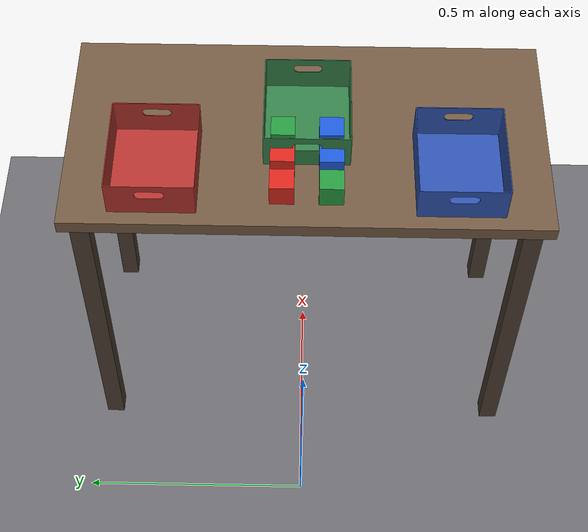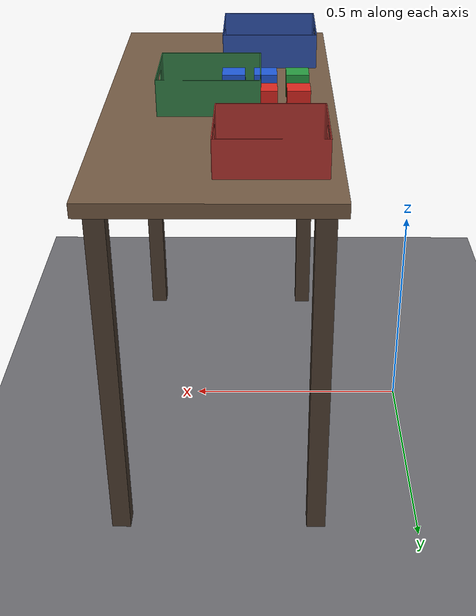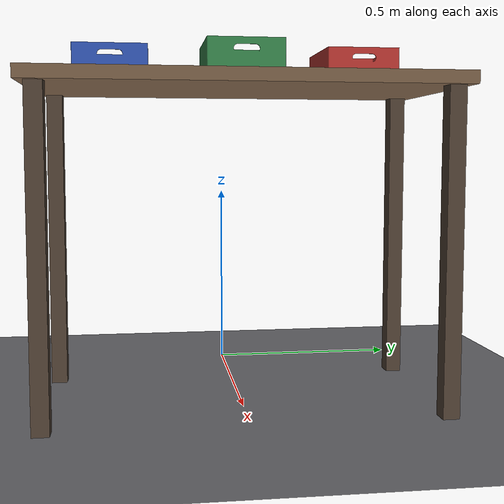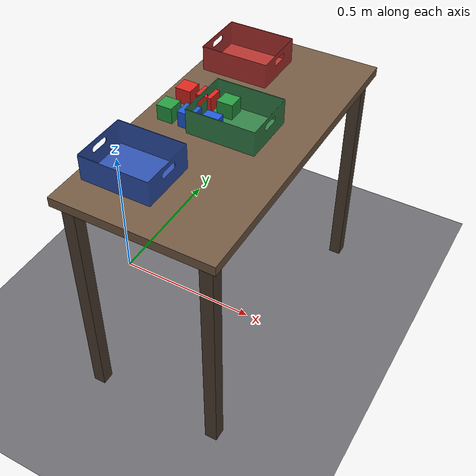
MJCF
<mujoco model="g1_cube_sort">
  <include file="g1_upper.xml"/>

  <!-- timestep is overridden at load time by the app (?dt=...) -->
  <option timestep="0.002" integrator="implicitfast" cone="elliptic" impratio="10"/>

  <default>
    <default class="touchable">
      <geom solref="0.01 1" priority="1"/>
    </default>
    <default class="object">
      <geom solref="0.01 1" priority="2"/>
    </default>
  </default>

  <asset>
    <material name="floor" rgba="0.42 0.42 0.44 1"/>
    <material name="table" rgba="0.45 0.35 0.26 1"/>
    <material name="table_leg" rgba="0.3 0.24 0.19 1"/>
    <material name="red" rgba="0.85 0.15 0.12 1"/>
    <material name="green" rgba="0.15 0.6 0.25 1"/>
    <material name="blue" rgba="0.12 0.35 0.85 1"/>
    <material name="red_bin" rgba="0.7 0.2 0.18 1"/>
    <material name="green_bin" rgba="0.2 0.5 0.28 1"/>
    <material name="blue_bin" rgba="0.18 0.32 0.68 1"/>
    <mesh name="bin_visual" file="objects/bin/visual.stl"/>
  </asset>

  <worldbody>
    <geom name="floor" type="plane" size="0 0 0.05" material="floor"/>

    <body name="table" pos="0.43 0 0">
      <geom name="table_top" class="touchable" type="box" size="0.25 0.5 0.015" pos="0 0 0.775" material="table"/>
      <geom type="box" size="0.02 0.02 0.38" pos="0.21 0.46 0.38" material="table_leg"/>
      <geom type="box" size="0.02 0.02 0.38" pos="0.21 -0.46 0.38" material="table_leg"/>
      <geom type="box" size="0.02 0.02 0.38" pos="-0.21 0.46 0.38" material="table_leg"/>
      <geom type="box" size="0.02 0.02 0.38" pos="-0.21 -0.46 0.38" material="table_leg"/>
    </body>

    <!-- Bins (220 x 180 x 80 mm, base centred at pos): red on the left, green ahead, blue on the right.
         The mesh is visual only; collision is the matching box set below. -->
    <body name="bin_red" pos="0.32 0.31 0.79">
      <geom type="mesh" mesh="bin_visual" contype="0" conaffinity="0" density="0" material="red_bin"/>
      <geom name="bin_red_floor" class="touchable" type="box" group="3" size="0.11 0.09 0.001" pos="0 0 0.001"/>
      <geom name="bin_red_wall_x0" class="touchable" type="box" group="3" size="0.001 0.09 0.039" pos="0.109 0 0.041"/>
      <geom name="bin_red_wall_x1" class="touchable" type="box" group="3" size="0.001 0.09 0.039" pos="-0.109 0 0.041"/>
      <geom name="bin_red_wall_y0" class="touchable" type="box" group="3" size="0.11 0.001 0.039" pos="0 0.089 0.041"/>
      <geom name="bin_red_wall_y1" class="touchable" type="box" group="3" size="0.11 0.001 0.039" pos="0 -0.089 0.041"/>
    </body>
    <body name="bin_green" pos="0.45 0.0 0.79">
      <geom type="mesh" mesh="bin_visual" contype="0" conaffinity="0" density="0" material="green_bin"/>
      <geom name="bin_green_floor" class="touchable" type="box" group="3" size="0.11 0.09 0.001" pos="0 0 0.001"/>
      <geom name="bin_green_wall_x0" class="touchable" type="box" group="3" size="0.001 0.09 0.039" pos="0.109 0 0.041"/>
      <geom name="bin_green_wall_x1" class="touchable" type="box" group="3" size="0.001 0.09 0.039" pos="-0.109 0 0.041"/>
      <geom name="bin_green_wall_y0" class="touchable" type="box" group="3" size="0.11 0.001 0.039" pos="0 0.089 0.041"/>
      <geom name="bin_green_wall_y1" class="touchable" type="box" group="3" size="0.11 0.001 0.039" pos="0 -0.089 0.041"/>
    </body>
    <body name="bin_blue" pos="0.32 -0.31 0.79">
      <geom type="mesh" mesh="bin_visual" contype="0" conaffinity="0" density="0" material="blue_bin"/>
      <geom name="bin_blue_floor" class="touchable" type="box" group="3" size="0.11 0.09 0.001" pos="0 0 0.001"/>
      <geom name="bin_blue_wall_x0" class="touchable" type="box" group="3" size="0.001 0.09 0.039" pos="0.109 0 0.041"/>
      <geom name="bin_blue_wall_x1" class="touchable" type="box" group="3" size="0.001 0.09 0.039" pos="-0.109 0 0.041"/>
      <geom name="bin_blue_wall_y0" class="touchable" type="box" group="3" size="0.11 0.001 0.039" pos="0 0.089 0.041"/>
      <geom name="bin_blue_wall_y1" class="touchable" type="box" group="3" size="0.11 0.001 0.039" pos="0 -0.089 0.041"/>
    </body>

    <!-- Cubes: 5 cm printed PLA, ~60 g with infill; positions are set at reset -->
    <body name="cube0" pos="0.26 0.05 0.816">
      <freejoint name="cube0_free"/>
      <geom name="cube0" class="object" type="box" size="0.025 0.025 0.025" mass="0.06" condim="4" friction="0.5 0.005 0.0002" material="red"/>
    </body>
    <body name="cube1" pos="0.33 0.05 0.816">
      <freejoint name="cube1_free"/>
      <geom name="cube1" class="object" type="box" size="0.025 0.025 0.025" mass="0.06" condim="4" friction="0.5 0.005 0.0002" material="red"/>
    </body>
    <body name="cube2" pos="0.40 0.05 0.816">
      <freejoint name="cube2_free"/>
      <geom name="cube2" class="object" type="box" size="0.025 0.025 0.025" mass="0.06" condim="4" friction="0.5 0.005 0.0002" material="green"/>
    </body>
    <body name="cube3" pos="0.26 -0.05 0.816">
      <freejoint name="cube3_free"/>
      <geom name="cube3" class="object" type="box" size="0.025 0.025 0.025" mass="0.06" condim="4" friction="0.5 0.005 0.0002" material="green"/>
    </body>
    <body name="cube4" pos="0.33 -0.05 0.816">
      <freejoint name="cube4_free"/>
      <geom name="cube4" class="object" type="box" size="0.025 0.025 0.025" mass="0.06" condim="4" friction="0.5 0.005 0.0002" material="blue"/>
    </body>
    <body name="cube5" pos="0.40 -0.05 0.816">
      <freejoint name="cube5_free"/>
      <geom name="cube5" class="object" type="box" size="0.025 0.025 0.025" mass="0.06" condim="4" friction="0.5 0.005 0.0002" material="blue"/>
    </body>
  </worldbody>
</mujoco>

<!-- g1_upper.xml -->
<!-- Generated by scripts/build-g1-mjcf.py from MuJoCo Menagerie unitree_g1/g1_with_hands.xml (commit 0059d4335f8156206f63a35662313385f7ad6d74, BSD-3-Clause, see LICENSE-g1). Do not edit by hand. -->
<mujoco model="g1_29dof_with_hand_fixed_base">
  <compiler angle="radian" meshdir="meshes" />
  <option integrator="implicitfast" />
  <default>
    <default class="g1">
      <site rgba="1 0 0 1" size="0.01" group="5" />
      <joint armature="0.01" frictionloss="0.3" />
      <position inheritrange="1" />
      <default class="visual">
        <geom group="2" type="mesh" contype="0" conaffinity="0" density="0" material="metal" />
      </default>
      <default class="collision">
        <geom group="3" type="mesh" />
        <default class="foot">
          <geom type="sphere" size="0.005" priority="1" friction="0.6" condim="3" />
        </default>
      </default>
    </default>
  </default>
  <asset>
    <material name="black" rgba="0.2 0.2 0.2 1" />
    <material name="metal" rgba="0.7 0.7 0.7 1" />
    <mesh name="head_link_hull" file="hulls/head_link.STL" />
    <mesh name="left_elbow_link_hull" file="hulls/left_elbow_link.STL" />
    <mesh name="left_hand_index_0_link_hull" file="hulls/left_hand_index_0_link.STL" />
    <mesh name="left_hand_index_1_link_hull" file="hulls/left_hand_index_1_link.STL" />
    <mesh name="left_hand_middle_0_link_hull" file="hulls/left_hand_middle_0_link.STL" />
    <mesh name="left_hand_middle_1_link_hull" file="hulls/left_hand_middle_1_link.STL" />
    <mesh name="left_hand_palm_link_hull" file="hulls/left_hand_palm_link.STL" />
    <mesh name="left_hand_thumb_0_link_hull" file="hulls/left_hand_thumb_0_link.STL" />
    <mesh name="left_hand_thumb_2_link_hull" file="hulls/left_hand_thumb_2_link.STL" />
    <mesh name="left_shoulder_yaw_link_hull" file="hulls/left_shoulder_yaw_link.STL" />
    <mesh name="left_wrist_pitch_link_hull" file="hulls/left_wrist_pitch_link.STL" />
    <mesh name="left_wrist_roll_link_hull" file="hulls/left_wrist_roll_link.STL" />
    <mesh name="left_wrist_yaw_link_hull" file="hulls/left_wrist_yaw_link.STL" />
    <mesh name="pelvis_contour_link_hull" file="hulls/pelvis_contour_link.STL" />
    <mesh name="right_elbow_link_hull" file="hulls/right_elbow_link.STL" />
    <mesh name="right_hand_index_0_link_hull" file="hulls/right_hand_index_0_link.STL" />
    <mesh name="right_hand_index_1_link_hull" file="hulls/right_hand_index_1_link.STL" />
    <mesh name="right_hand_middle_0_link_hull" file="hulls/right_hand_middle_0_link.STL" />
    <mesh name="right_hand_middle_1_link_hull" file="hulls/right_hand_middle_1_link.STL" />
    <mesh name="right_hand_palm_link_hull" file="hulls/right_hand_palm_link.STL" />
    <mesh name="right_hand_thumb_0_link_hull" file="hulls/right_hand_thumb_0_link.STL" />
    <mesh name="right_hand_thumb_2_link_hull" file="hulls/right_hand_thumb_2_link.STL" />
    <mesh name="right_shoulder_yaw_link_hull" file="hulls/right_shoulder_yaw_link.STL" />
    <mesh name="right_wrist_pitch_link_hull" file="hulls/right_wrist_pitch_link.STL" />
    <mesh name="right_wrist_roll_link_hull" file="hulls/right_wrist_roll_link.STL" />
    <mesh name="right_wrist_yaw_link_hull" file="hulls/right_wrist_yaw_link.STL" />
    <mesh name="torso_link_hull" file="hulls/torso_link.STL" />
  </asset>
  <worldbody>
    <light pos="1 0 3.5" dir="0 0 -1" directional="true" />
    <body name="pelvis" pos="0 0 0.793" childclass="g1">
      <inertial pos="0 0 -0.07605" quat="1 0 -0.000399148 0" mass="3.813" diaginertia="0.010549 0.0093089 0.0079184" />
      <geom class="collision" mesh="pelvis_contour_link_hull" />
      <site name="imu_in_pelvis" size="0.01" pos="0.04525 0 -0.08339" />
      <body name="left_hip_pitch_link" pos="0 0.064452 -0.1027">
        <inertial pos="0.002741 0.047791 -0.02606" quat="0.954862 0.293964 0.0302556 0.030122" mass="1.35" diaginertia="0.00181517 0.00153422 0.00116212" />
        <body name="left_hip_roll_link" pos="0 0.052 -0.030465" quat="0.996179 0 -0.0873386 0">
          <inertial pos="0.029812 -0.001045 -0.087934" quat="0.977808 -1.97119e-05 0.205576 -0.0403793" mass="1.52" diaginertia="0.00254986 0.00241169 0.00148755" />
          <body name="left_hip_yaw_link" pos="0.025001 0 -0.12412">
            <inertial pos="-0.057709 -0.010981 -0.15078" quat="0.600598 0.15832 0.223482 0.751181" mass="1.702" diaginertia="0.00776166 0.00717575 0.00160139" />
            <body name="left_knee_link" pos="-0.078273 0.0021489 -0.17734" quat="0.996179 0 0.0873386 0">
              <inertial pos="0.005457 0.003964 -0.12074" quat="0.923418 -0.0327699 0.0158246 0.382067" mass="1.932" diaginertia="0.0113804 0.0112778 0.00146458" />
              <body name="left_ankle_pitch_link" pos="0 -9.4445e-05 -0.30001">
                <inertial pos="-0.007269 0 0.011137" quat="0.603053 0.369225 0.369225 0.603053" mass="0.074" diaginertia="1.89e-05 1.40805e-05 6.9195e-06" />
                <body name="left_ankle_roll_link" pos="0 0 -0.017558">
                  <inertial pos="0.026505 0 -0.016425" quat="-0.000481092 0.728482 -0.000618967 0.685065" mass="0.608" diaginertia="0.00167218 0.0016161 0.000217621" />
                </body>
              </body>
            </body>
          </body>
        </body>
      </body>
      <body name="right_hip_pitch_link" pos="0 -0.064452 -0.1027">
        <inertial pos="0.002741 -0.047791 -0.02606" quat="0.954862 -0.293964 0.0302556 -0.030122" mass="1.35" diaginertia="0.00181517 0.00153422 0.00116212" />
        <body name="right_hip_roll_link" pos="0 -0.052 -0.030465" quat="0.996179 0 -0.0873386 0">
          <inertial pos="0.029812 0.001045 -0.087934" quat="0.977808 1.97119e-05 0.205576 0.0403793" mass="1.52" diaginertia="0.00254986 0.00241169 0.00148755" />
          <body name="right_hip_yaw_link" pos="0.025001 0 -0.12412">
            <inertial pos="-0.057709 0.010981 -0.15078" quat="0.751181 0.223482 0.15832 0.600598" mass="1.702" diaginertia="0.00776166 0.00717575 0.00160139" />
            <body name="right_knee_link" pos="-0.078273 -0.0021489 -0.17734" quat="0.996179 0 0.0873386 0">
              <inertial pos="0.005457 -0.003964 -0.12074" quat="0.923439 0.0345276 0.0116333 -0.382012" mass="1.932" diaginertia="0.011374 0.0112843 0.00146452" />
              <body name="right_ankle_pitch_link" pos="0 9.4445e-05 -0.30001">
                <inertial pos="-0.007269 0 0.011137" quat="0.603053 0.369225 0.369225 0.603053" mass="0.074" diaginertia="1.89e-05 1.40805e-05 6.9195e-06" />
                <body name="right_ankle_roll_link" pos="0 0 -0.017558">
                  <inertial pos="0.026505 0 -0.016425" quat="0.000481092 0.728482 0.000618967 0.685065" mass="0.608" diaginertia="0.00167218 0.0016161 0.000217621" />
                </body>
              </body>
            </body>
          </body>
        </body>
      </body>
      <body name="waist_yaw_link">
        <inertial pos="0.003494 0.000233 0.018034" quat="0.289697 0.591001 -0.337795 0.672821" mass="0.214" diaginertia="0.000163531 0.000107714 0.000102205" />
        <joint name="waist_yaw_joint" axis="0 0 1" range="-2.618 2.618" actuatorfrcrange="-88 88" />
        <body name="waist_roll_link" pos="-0.0039635 0 0.044">
          <inertial pos="0 2.3e-05 0" quat="0.5 0.5 -0.5 0.5" mass="0.086" diaginertia="8.245e-06 7.079e-06 6.339e-06" />
          <joint name="waist_roll_joint" axis="1 0 0" range="-0.52 0.52" actuatorfrcrange="-50 50" />
          <body name="torso_link">
            <inertial pos="0.00203158 0.000339683 0.184568" quat="0.999803 -6.03319e-05 0.0198256 0.00131986" mass="7.818" diaginertia="0.121847 0.109825 0.0273735" />
            <joint name="waist_pitch_joint" axis="0 1 0" range="-0.52 0.52" actuatorfrcrange="-50 50" />
            <geom class="collision" mesh="torso_link_hull" />
            <geom pos="0.0039635 0 -0.044" class="collision" mesh="head_link_hull" />
            <site name="imu_in_torso" size="0.01" pos="-0.03959 -0.00224 0.14792" />
            <body name="left_shoulder_pitch_link" pos="0.0039563 0.10022 0.24778" quat="0.990264 0.139201 1.38722e-05 -9.86868e-05" gravcomp="1">
              <inertial pos="0 0.035892 -0.011628" quat="0.654152 0.0130458 -0.326267 0.68225" mass="0.718" diaginertia="0.000465864 0.000432842 0.000406394" />
              <joint name="left_shoulder_pitch_joint" axis="0 1 0" range="-3.0892 2.6704" actuatorfrcrange="-25 25" />
              <geom size="0.03 0.025" pos="0 0.04 -0.01" quat="0.707107 0 0.707107 0" type="cylinder" class="collision" />
              <body name="left_shoulder_roll_link" pos="0 0.038 -0.013831" quat="0.990268 -0.139172 0 0" gravcomp="1">
                <inertial pos="-0.000227 0.00727 -0.063243" quat="0.701256 -0.0196223 -0.00710317 0.712604" mass="0.643" diaginertia="0.000691311 0.000618011 0.000388977" />
                <joint name="left_shoulder_roll_joint" axis="1 0 0" range="-1.5882 2.2515" actuatorfrcrange="-25 25" />
                <geom size="0.03 0.015" pos="-0.004 0.006 -0.053" type="cylinder" class="collision" />
                <body name="left_shoulder_yaw_link" pos="0 0.00624 -0.1032" gravcomp="1">
                  <inertial pos="0.010773 -0.002949 -0.072009" quat="0.716879 -0.0964829 -0.0679942 0.687134" mass="0.734" diaginertia="0.00106187 0.00103217 0.000400661" />
                  <joint name="left_shoulder_yaw_joint" axis="0 0 1" range="-2.618 2.618" actuatorfrcrange="-25 25" />
                  <geom class="collision" mesh="left_shoulder_yaw_link_hull" />
                  <body name="left_elbow_link" pos="0.015783 0 -0.080518" gravcomp="1">
                    <inertial pos="0.064956 0.004454 -0.010062" quat="0.541765 0.636132 0.388821 0.388129" mass="0.6" diaginertia="0.000443035 0.000421612 0.000259353" />
                    <joint name="left_elbow_joint" axis="0 1 0" range="-1.0472 2.0944" actuatorfrcrange="-25 25" />
                    <geom class="collision" mesh="left_elbow_link_hull" />
                    <body name="left_wrist_roll_link" pos="0.1 0.00188791 -0.01" gravcomp="1">
                      <inertial pos="0.0171394 0.000537591 4.8864e-07" quat="0.575338 0.411667 -0.574906 0.411094" mass="0.085445" diaginertia="5.48211e-05 4.96646e-05 3.57798e-05" />
                      <joint name="left_wrist_roll_joint" axis="1 0 0" range="-1.97222 1.97222" actuatorfrcrange="-25 25" />
                      <geom class="collision" mesh="left_wrist_roll_link_hull" />
                      <body name="left_wrist_pitch_link" pos="0.038 0 0" gravcomp="1">
                        <inertial pos="0.0229999 -0.00111685 -0.00111658" quat="0.249998 0.661363 0.293036 0.643608" mass="0.48405" diaginertia="0.000430353 0.000429873 0.000164648" />
                        <joint name="left_wrist_pitch_joint" axis="0 1 0" range="-1.61443 1.61443" actuatorfrcrange="-5 5" />
                        <geom class="collision" mesh="left_wrist_pitch_link_hull" />
                        <body name="left_wrist_yaw_link" pos="0.046 0 0" gravcomp="1">
                          <inertial pos="0.0885506 0.00212216 -0.000374562" quat="0.487149 0.493844 0.513241 0.505358" mass="0.457415" diaginertia="0.00105989 0.000895419 0.000323842" />
                          <joint name="left_wrist_yaw_joint" axis="0 0 1" range="-1.61443 1.61443" actuatorfrcrange="-5 5" />
                          <geom class="collision" mesh="left_wrist_yaw_link_hull" />
                          <geom pos="0.0415 0.003 0" quat="1 0 0 0" class="collision" mesh="left_hand_palm_link_hull" />
                          <body name="left_hand_thumb_0_link" pos="0.067 0.003 0" gravcomp="1">
                            <inertial pos="-0.000884246 -0.00863407 0.000944293" quat="0.462991 0.643965 -0.460173 0.398986" mass="0.0862366" diaginertia="1.6546e-05 1.60058e-05 1.43741e-05" />
                            <joint name="left_hand_thumb_0_joint" axis="0 1 0" range="-1.0472 1.0472" actuatorfrcrange="-2.45 2.45" frictionloss="0.01" armature="0.0005" />
                            <geom class="collision" mesh="left_hand_thumb_0_link_hull" />
                            <body name="left_hand_thumb_1_link" pos="-0.0025 -0.0193 0" gravcomp="1">
                              <inertial pos="-0.000827888 -0.0354744 -0.0003809" quat="0.685598 0.705471 -0.15207 0.0956069" mass="0.0588507" diaginertia="1.28514e-05 1.22902e-05 5.9666e-06" />
                              <joint name="left_hand_thumb_1_joint" axis="0 0 1" range="-0.724312 1.0472" actuatorfrcrange="-1.4 1.4" frictionloss="0.01" armature="0.0005" />
                              <geom size="0.01 0.015 0.01" pos="-0.001 -0.032 0" type="box" class="collision" />
                              <body name="left_hand_thumb_2_link" pos="0 -0.0458 0" gravcomp="1">
                                <inertial pos="-0.00171735 -0.0262819 0.000107789" quat="0.703174 0.710977 -0.00017564 -0.00766553" mass="0.0203063" diaginertia="4.61314e-06 3.86645e-06 1.53495e-06" />
                                <joint name="left_hand_thumb_2_joint" axis="0 0 1" range="0 1.74533" actuatorfrcrange="-1.4 1.4" frictionloss="0.01" armature="0.0005" />
                                <geom class="collision" mesh="left_hand_thumb_2_link_hull" />
                              </body>
                            </body>
                          </body>
                          <body name="left_hand_middle_0_link" pos="0.1192 0.0046 -0.0285" gravcomp="1">
                            <inertial pos="0.0354744 0.000827888 0.0003809" quat="0.391313 0.552395 0.417187 0.606373" mass="0.0588507" diaginertia="1.28514e-05 1.22902e-05 5.9666e-06" />
                            <joint name="left_hand_middle_0_joint" axis="0 0 1" range="-1.5708 0" actuatorfrcrange="-1.4 1.4" frictionloss="0.01" armature="0.0005" />
                            <geom class="collision" mesh="left_hand_middle_0_link_hull" />
                            <body name="left_hand_middle_1_link" pos="0.0458 0 0" gravcomp="1">
                              <inertial pos="0.0262819 0.00171735 -0.000107789" quat="0.502612 0.491799 0.502639 0.502861" mass="0.0203063" diaginertia="4.61314e-06 3.86645e-06 1.53495e-06" />
                              <joint name="left_hand_middle_1_joint" axis="0 0 1" range="-1.74533 0" actuatorfrcrange="-1.4 1.4" frictionloss="0.01" armature="0.0005" />
                              <geom class="collision" mesh="left_hand_middle_1_link_hull" />
                            </body>
                          </body>
                          <body name="left_hand_index_0_link" pos="0.1192 0.0046 0.0285" gravcomp="1">
                            <inertial pos="0.0354744 0.000827888 0.0003809" quat="0.391313 0.552395 0.417187 0.606373" mass="0.0588507" diaginertia="1.28514e-05 1.22902e-05 5.9666e-06" />
                            <joint name="left_hand_index_0_joint" axis="0 0 1" range="-1.5708 0" actuatorfrcrange="-1.4 1.4" frictionloss="0.01" armature="0.0005" />
                            <geom class="collision" mesh="left_hand_index_0_link_hull" />
                            <body name="left_hand_index_1_link" pos="0.0458 0 0" gravcomp="1">
                              <inertial pos="0.0262819 0.00171735 -0.000107789" quat="0.502612 0.491799 0.502639 0.502861" mass="0.0203063" diaginertia="4.61314e-06 3.86645e-06 1.53495e-06" />
                              <joint name="left_hand_index_1_joint" axis="0 0 1" range="-1.74533 0" actuatorfrcrange="-1.4 1.4" frictionloss="0.01" armature="0.0005" />
                              <geom class="collision" mesh="left_hand_index_1_link_hull" />
                            </body>
                          </body>
                          <site name="left_palm" pos="0.0415 0.003 0" size="0.005" group="5" />
                          <site name="left_grip" pos="0.115 -0.035 0" size="0.005" group="5" />
                        </body>
                      </body>
                    </body>
                  </body>
                </body>
              </body>
            </body>
            <body name="right_shoulder_pitch_link" pos="0.0039563 -0.10021 0.24778" quat="0.990264 -0.139201 1.38722e-05 9.86868e-05" gravcomp="1">
              <inertial pos="0 -0.035892 -0.011628" quat="0.68225 -0.326267 0.0130458 0.654152" mass="0.718" diaginertia="0.000465864 0.000432842 0.000406394" />
              <joint name="right_shoulder_pitch_joint" axis="0 1 0" range="-3.0892 2.6704" actuatorfrcrange="-25 25" />
              <geom size="0.03 0.025" pos="0 -0.04 -0.01" quat="0.707107 0 0.707107 0" type="cylinder" class="collision" />
              <body name="right_shoulder_roll_link" pos="0 -0.038 -0.013831" quat="0.990268 0.139172 0 0" gravcomp="1">
                <inertial pos="-0.000227 -0.00727 -0.063243" quat="0.712604 -0.00710317 -0.0196223 0.701256" mass="0.643" diaginertia="0.000691311 0.000618011 0.000388977" />
                <joint name="right_shoulder_roll_joint" axis="1 0 0" range="-2.2515 1.5882" actuatorfrcrange="-25 25" />
                <geom size="0.03 0.015" pos="-0.004 -0.006 -0.053" type="cylinder" class="collision" />
                <body name="right_shoulder_yaw_link" pos="0 -0.00624 -0.1032" gravcomp="1">
                  <inertial pos="0.010773 0.002949 -0.072009" quat="0.687134 -0.0679942 -0.0964829 0.716879" mass="0.734" diaginertia="0.00106187 0.00103217 0.000400661" />
                  <joint name="right_shoulder_yaw_joint" axis="0 0 1" range="-2.618 2.618" actuatorfrcrange="-25 25" />
                  <geom class="collision" mesh="right_shoulder_yaw_link_hull" />
                  <body name="right_elbow_link" pos="0.015783 0 -0.080518" gravcomp="1">
                    <inertial pos="0.064956 -0.004454 -0.010062" quat="0.388129 0.388821 0.636132 0.541765" mass="0.6" diaginertia="0.000443035 0.000421612 0.000259353" />
                    <joint name="right_elbow_joint" axis="0 1 0" range="-1.0472 2.0944" actuatorfrcrange="-25 25" />
                    <geom class="collision" mesh="right_elbow_link_hull" />
                    <body name="right_wrist_roll_link" pos="0.1 -0.00188791 -0.01" gravcomp="1">
                      <inertial pos="0.0171394 -0.000537591 4.8864e-07" quat="0.411667 0.575338 -0.411094 0.574906" mass="0.085445" diaginertia="5.48211e-05 4.96646e-05 3.57798e-05" />
                      <joint name="right_wrist_roll_joint" axis="1 0 0" range="-1.97222 1.97222" actuatorfrcrange="-25 25" />
                      <geom class="collision" mesh="right_wrist_roll_link_hull" />
                      <body name="right_wrist_pitch_link" pos="0.038 0 0" gravcomp="1">
                        <inertial pos="0.0229999 0.00111685 -0.00111658" quat="0.643608 0.293036 0.661363 0.249998" mass="0.48405" diaginertia="0.000430353 0.000429873 0.000164648" />
                        <joint name="right_wrist_pitch_joint" axis="0 1 0" range="-1.61443 1.61443" actuatorfrcrange="-5 5" />
                        <geom class="collision" mesh="right_wrist_pitch_link_hull" />
                        <body name="right_wrist_yaw_link" pos="0.046 0 0" gravcomp="1">
                          <inertial pos="0.0885506 -0.00212216 -0.000374562" quat="0.505358 0.513241 0.493844 0.487149" mass="0.457415" diaginertia="0.00105989 0.000895419 0.000323842" />
                          <joint name="right_wrist_yaw_joint" axis="0 0 1" range="-1.61443 1.61443" actuatorfrcrange="-5 5" />
                          <geom class="collision" mesh="right_wrist_yaw_link_hull" />
                          <geom pos="0.0415 -0.003 0" quat="1 0 0 0" class="collision" mesh="right_hand_palm_link_hull" />
                          <body name="right_hand_thumb_0_link" pos="0.067 -0.003 0" gravcomp="1">
                            <inertial pos="-0.000884246 0.00863407 0.000944293" quat="0.643965 0.462991 -0.398986 0.460173" mass="0.0862366" diaginertia="1.6546e-05 1.60058e-05 1.43741e-05" />
                            <joint name="right_hand_thumb_0_joint" axis="0 1 0" range="-1.0472 1.0472" actuatorfrcrange="-2.45 2.45" frictionloss="0.01" armature="0.0005" />
                            <geom class="collision" mesh="right_hand_thumb_0_link_hull" />
                            <body name="right_hand_thumb_1_link" pos="-0.0025 0.0193 0" gravcomp="1">
                              <inertial pos="-0.000827888 0.0354744 -0.0003809" quat="0.705471 0.685598 -0.0956069 0.15207" mass="0.0588507" diaginertia="1.28514e-05 1.22902e-05 5.9666e-06" />
                              <joint name="right_hand_thumb_1_joint" axis="0 0 1" range="-1.0472 0.724312" actuatorfrcrange="-1.4 1.4" frictionloss="0.01" armature="0.0005" />
                              <geom size="0.01 0.015 0.01" pos="-0.001 0.032 0" type="box" class="collision" />
                              <body name="right_hand_thumb_2_link" pos="0 0.0458 0" gravcomp="1">
                                <inertial pos="-0.00171735 0.0262819 0.000107789" quat="0.710977 0.703174 0.00766553 0.00017564" mass="0.0203063" diaginertia="4.61314e-06 3.86645e-06 1.53495e-06" />
                                <joint name="right_hand_thumb_2_joint" axis="0 0 1" range="-1.74533 0" actuatorfrcrange="-1.4 1.4" frictionloss="0.01" armature="0.0005" />
                                <geom class="collision" mesh="right_hand_thumb_2_link_hull" />
                              </body>
                            </body>
                          </body>
                          <body name="right_hand_middle_0_link" pos="0.1192 -0.0046 -0.0285" gravcomp="1">
                            <inertial pos="0.0354744 -0.000827888 0.0003809" quat="0.606373 0.417187 0.552395 0.391313" mass="0.0588507" diaginertia="1.28514e-05 1.22902e-05 5.9666e-06" />
                            <joint name="right_hand_middle_0_joint" axis="0 0 1" range="0 1.5708" actuatorfrcrange="-1.4 1.4" frictionloss="0.01" armature="0.0005" />
                            <geom class="collision" mesh="right_hand_middle_0_link_hull" />
                            <body name="right_hand_middle_1_link" pos="0.0458 0 0" gravcomp="1">
                              <inertial pos="0.0262819 -0.00171735 -0.000107789" quat="0.502861 0.502639 0.491799 0.502612" mass="0.0203063" diaginertia="4.61314e-06 3.86645e-06 1.53495e-06" />
                              <joint name="right_hand_middle_1_joint" axis="0 0 1" range="0 1.74533" actuatorfrcrange="-1.4 1.4" frictionloss="0.01" armature="0.0005" />
                              <geom class="collision" mesh="right_hand_middle_1_link_hull" />
                            </body>
                          </body>
                          <body name="right_hand_index_0_link" pos="0.1192 -0.0046 0.0285" gravcomp="1">
                            <inertial pos="0.0354744 -0.000827888 0.0003809" quat="0.606373 0.417187 0.552395 0.391313" mass="0.0588507" diaginertia="1.28514e-05 1.22902e-05 5.9666e-06" />
                            <joint name="right_hand_index_0_joint" axis="0 0 1" range="0 1.5708" actuatorfrcrange="-1.4 1.4" frictionloss="0.01" armature="0.0005" />
                            <geom class="collision" mesh="right_hand_index_0_link_hull" />
                            <body name="right_hand_index_1_link" pos="0.0458 0 0" gravcomp="1">
                              <inertial pos="0.0262819 -0.00171735 -0.000107789" quat="0.502861 0.502639 0.491799 0.502612" mass="0.0203063" diaginertia="4.61314e-06 3.86645e-06 1.53495e-06" />
                              <joint name="right_hand_index_1_joint" axis="0 0 1" range="0 1.74533" actuatorfrcrange="-1.4 1.4" frictionloss="0.01" armature="0.0005" />
                              <geom class="collision" mesh="right_hand_index_1_link_hull" />
                            </body>
                          </body>
                          <site name="right_palm" pos="0.0415 -0.003 0" size="0.005" group="5" />
                          <site name="right_grip" pos="0.115 0.035 0" size="0.005" group="5" />
                        </body>
                      </body>
                    </body>
                  </body>
                </body>
              </body>
            </body>
            <site name="eye" pos="0.0002835 0.00003 0.40618" size="0.005" group="5" />
            <site name="head_cam" pos="0.0576235 0.01753 0.41987" size="0.005" group="5" euler="0 0.8307767 0" />
          </body>
        </body>
      </body>
    </body>
  </worldbody>
  <actuator>
    <position class="g1" name="waist_yaw_joint" joint="waist_yaw_joint" kp="300" kv="3" />
    <position class="g1" name="waist_roll_joint" joint="waist_roll_joint" kp="300" kv="3" />
    <position class="g1" name="waist_pitch_joint" joint="waist_pitch_joint" kp="300" kv="3" />
    <position class="g1" name="left_shoulder_pitch_joint" joint="left_shoulder_pitch_joint" kp="80" kv="3" />
    <position class="g1" name="left_shoulder_roll_joint" joint="left_shoulder_roll_joint" kp="80" kv="3" />
    <position class="g1" name="left_shoulder_yaw_joint" joint="left_shoulder_yaw_joint" kp="80" kv="3" />
    <position class="g1" name="left_elbow_joint" joint="left_elbow_joint" kp="80" kv="3" />
    <position class="g1" name="left_wrist_roll_joint" joint="left_wrist_roll_joint" kp="40" kv="1.5" />
    <position class="g1" name="left_wrist_pitch_joint" joint="left_wrist_pitch_joint" kp="40" kv="1.5" />
    <position class="g1" name="left_wrist_yaw_joint" joint="left_wrist_yaw_joint" kp="40" kv="1.5" />
    <position class="g1" name="left_hand_thumb_0_joint" joint="left_hand_thumb_0_joint" kp="1.5" kv="0.2" />
    <position class="g1" name="left_hand_thumb_1_joint" joint="left_hand_thumb_1_joint" kp="1.5" kv="0.2" />
    <position class="g1" name="left_hand_thumb_2_joint" joint="left_hand_thumb_2_joint" kp="1.5" kv="0.2" />
    <position class="g1" name="left_hand_middle_0_joint" joint="left_hand_middle_0_joint" kp="1.5" kv="0.2" />
    <position class="g1" name="left_hand_middle_1_joint" joint="left_hand_middle_1_joint" kp="1.5" kv="0.2" />
    <position class="g1" name="left_hand_index_0_joint" joint="left_hand_index_0_joint" kp="1.5" kv="0.2" />
    <position class="g1" name="left_hand_index_1_joint" joint="left_hand_index_1_joint" kp="1.5" kv="0.2" />
    <position class="g1" name="right_shoulder_pitch_joint" joint="right_shoulder_pitch_joint" kp="80" kv="3" />
    <position class="g1" name="right_shoulder_roll_joint" joint="right_shoulder_roll_joint" kp="80" kv="3" />
    <position class="g1" name="right_shoulder_yaw_joint" joint="right_shoulder_yaw_joint" kp="80" kv="3" />
    <position class="g1" name="right_elbow_joint" joint="right_elbow_joint" kp="80" kv="3" />
    <position class="g1" name="right_wrist_roll_joint" joint="right_wrist_roll_joint" kp="40" kv="1.5" />
    <position class="g1" name="right_wrist_pitch_joint" joint="right_wrist_pitch_joint" kp="40" kv="1.5" />
    <position class="g1" name="right_wrist_yaw_joint" joint="right_wrist_yaw_joint" kp="40" kv="1.5" />
    <position class="g1" name="right_hand_thumb_0_joint" joint="right_hand_thumb_0_joint" kp="1.5" kv="0.2" />
    <position class="g1" name="right_hand_thumb_1_joint" joint="right_hand_thumb_1_joint" kp="1.5" kv="0.2" />
    <position class="g1" name="right_hand_thumb_2_joint" joint="right_hand_thumb_2_joint" kp="1.5" kv="0.2" />
    <position class="g1" name="right_hand_index_0_joint" joint="right_hand_index_0_joint" kp="1.5" kv="0.2" />
    <position class="g1" name="right_hand_index_1_joint" joint="right_hand_index_1_joint" kp="1.5" kv="0.2" />
    <position class="g1" name="right_hand_middle_0_joint" joint="right_hand_middle_0_joint" kp="1.5" kv="0.2" />
    <position class="g1" name="right_hand_middle_1_joint" joint="right_hand_middle_1_joint" kp="1.5" kv="0.2" />
  </actuator>
</mujoco>
